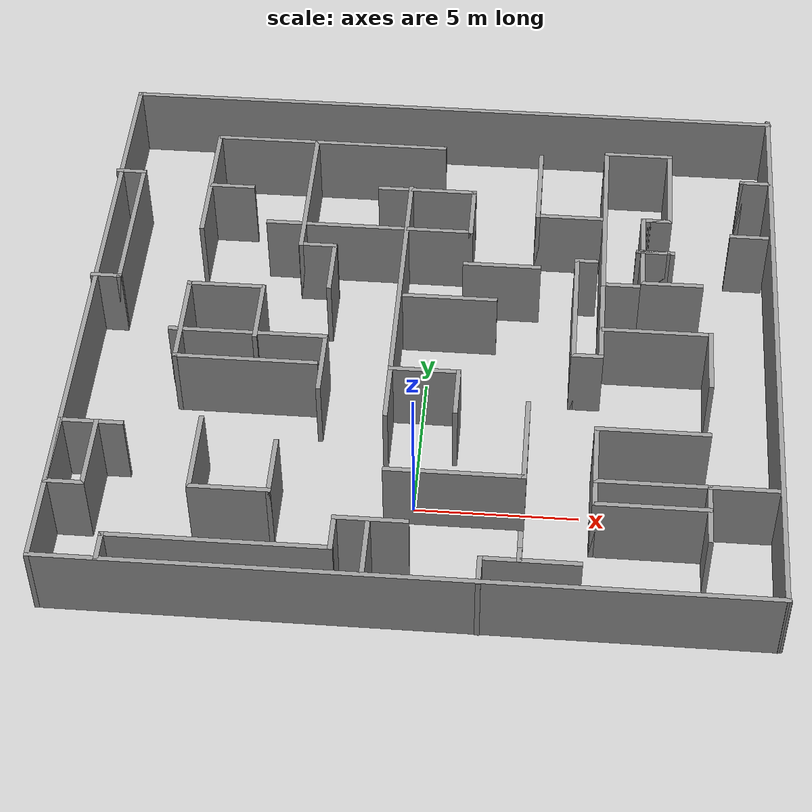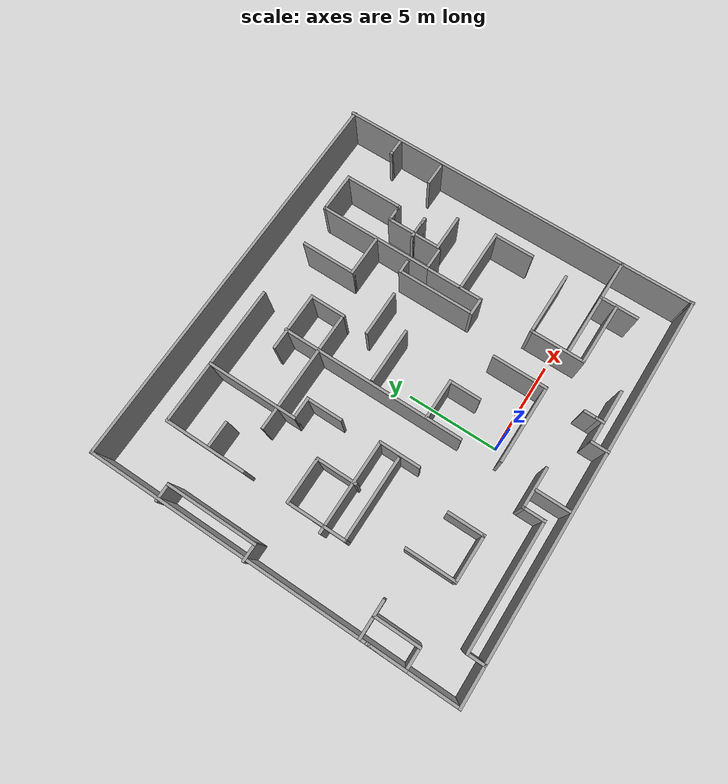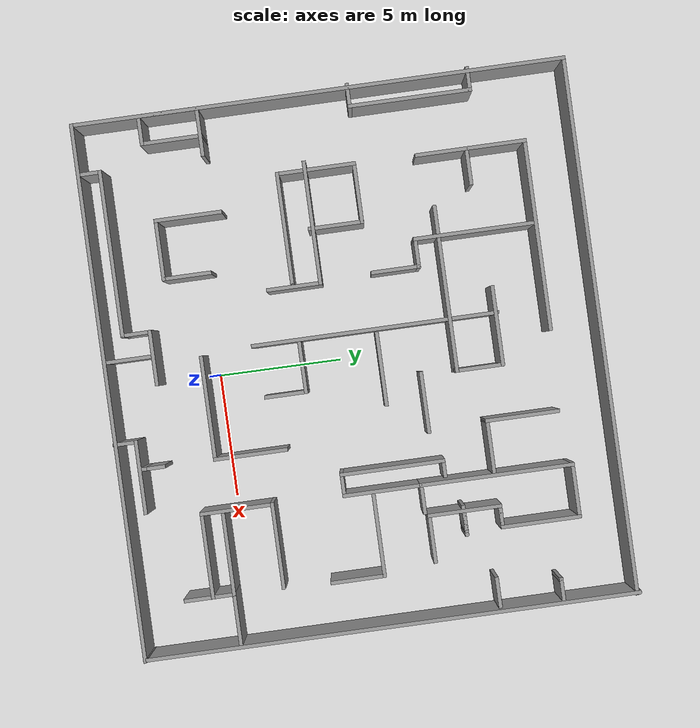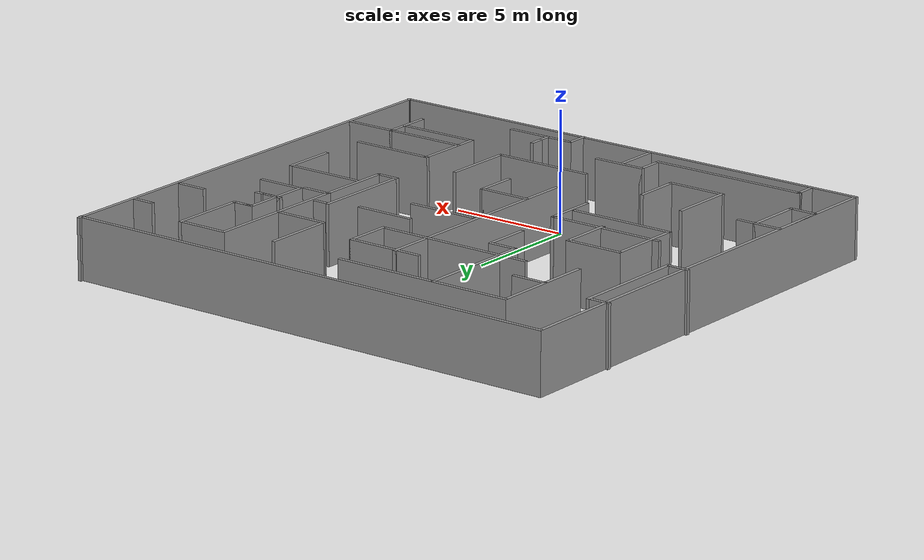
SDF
<?xml version="1.0" ?>
<sdf version="1.6">
  <world name="maze2_world">
    <include>
      <uri>file:///home/nitron/inzynierka/ALSAI/worlds/maze2/model.sdf</uri>
    </include>
  </world>
</sdf>

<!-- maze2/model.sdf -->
<sdf version='1.7'>
  <model name='maze2'>
    <pose>0.047088 5.62001 0 0 -0 0</pose>
    <link name='Wall_0'>
      <collision name='Wall_0_Collision'>
        <geometry>
          <box>
            <size>20 0.15 2.5</size>
          </box>
        </geometry>
        <pose>0 0 1.25 0 -0 0</pose>
      </collision>
      <visual name='Wall_0_Visual'>
        <pose>0 0 1.25 0 -0 0</pose>
        <geometry>
          <box>
            <size>20 0.15 2.5</size>
          </box>
        </geometry>
        <material>
          <script>
            <uri>file://media/materials/scripts/gazebo.material</uri>
            <name>Gazebo/Grey</name>
          </script>
          <ambient>1 1 1 1</ambient>
        </material>
        <meta>
          <layer>0</layer>
        </meta>
      </visual>
      <pose>10.8162 0.061509 0 0 -0 -1.5708</pose>
    </link>
    <link name='Wall_1'>
      <collision name='Wall_1_Collision'>
        <geometry>
          <box>
            <size>0.25 0.15 2.5</size>
          </box>
        </geometry>
        <pose>0 0 1.25 0 -0 0</pose>
      </collision>
      <visual name='Wall_1_Visual'>
        <pose>0 0 1.25 0 -0 0</pose>
        <geometry>
          <box>
            <size>0.25 0.15 2.5</size>
          </box>
        </geometry>
        <material>
          <script>
            <uri>file://media/materials/scripts/gazebo.material</uri>
            <name>Gazebo/Grey</name>
          </script>
          <ambient>1 1 1 1</ambient>
        </material>
        <meta>
          <layer>0</layer>
        </meta>
      </visual>
      <pose>10.8291 -9.91179 0 0 -0 -1.309</pose>
    </link>
    <link name='Wall_101'>
      <collision name='Wall_101_Collision'>
        <geometry>
          <box>
            <size>3 0.15 2.5</size>
          </box>
        </geometry>
        <pose>0 0 1.25 0 -0 0</pose>
      </collision>
      <visual name='Wall_101_Visual'>
        <pose>0 0 1.25 0 -0 0</pose>
        <geometry>
          <box>
            <size>3 0.15 2.5</size>
          </box>
        </geometry>
        <material>
          <script>
            <uri>file://media/materials/scripts/gazebo.material</uri>
            <name>Gazebo/Grey</name>
          </script>
          <ambient>1 1 1 1</ambient>
        </material>
        <meta>
          <layer>0</layer>
        </meta>
      </visual>
      <pose>0.568752 0.993133 0 0 -0 0</pose>
    </link>
    <link name='Wall_103'>
      <collision name='Wall_103_Collision'>
        <geometry>
          <box>
            <size>2.5 0.15 2.5</size>
          </box>
        </geometry>
        <pose>0 0 1.25 0 -0 0</pose>
      </collision>
      <visual name='Wall_103_Visual'>
        <pose>0 0 1.25 0 -0 0</pose>
        <geometry>
          <box>
            <size>2.5 0.15 2.5</size>
          </box>
        </geometry>
        <material>
          <script>
            <uri>file://media/materials/scripts/gazebo.material</uri>
            <name>Gazebo/Grey</name>
          </script>
          <ambient>1 1 1 1</ambient>
        </material>
        <meta>
          <layer>0</layer>
        </meta>
      </visual>
      <pose>2.13319 2.52842 0 0 -0 0</pose>
    </link>
    <link name='Wall_105'>
      <collision name='Wall_105_Collision'>
        <geometry>
          <box>
            <size>3 0.15 2.5</size>
          </box>
        </geometry>
        <pose>0 0 1.25 0 -0 0</pose>
      </collision>
      <visual name='Wall_105_Visual'>
        <pose>0 0 1.25 0 -0 0</pose>
        <geometry>
          <box>
            <size>3 0.15 2.5</size>
          </box>
        </geometry>
        <material>
          <script>
            <uri>file://media/materials/scripts/gazebo.material</uri>
            <name>Gazebo/Grey</name>
          </script>
          <ambient>1 1 1 1</ambient>
        </material>
        <meta>
          <layer>0</layer>
        </meta>
      </visual>
      <pose>3.19133 6.3141 0 0 -0 -1.5708</pose>
    </link>
    <link name='Wall_106'>
      <collision name='Wall_106_Collision'>
        <geometry>
          <box>
            <size>2.25 0.15 2.5</size>
          </box>
        </geometry>
        <pose>0 0 1.25 0 -0 0</pose>
      </collision>
      <visual name='Wall_106_Visual'>
        <pose>0 0 1.25 0 -0 0</pose>
        <geometry>
          <box>
            <size>2.25 0.15 2.5</size>
          </box>
        </geometry>
        <material>
          <script>
            <uri>file://media/materials/scripts/gazebo.material</uri>
            <name>Gazebo/Grey</name>
          </script>
          <ambient>1 1 1 1</ambient>
        </material>
        <meta>
          <layer>0</layer>
        </meta>
      </visual>
      <pose>4.24133 4.8891 0 0 -0 0</pose>
    </link>
    <link name='Wall_11'>
      <collision name='Wall_11_Collision'>
        <geometry>
          <box>
            <size>1 0.15 2.5</size>
          </box>
        </geometry>
        <pose>0 0 1.25 0 -0 0</pose>
      </collision>
      <visual name='Wall_11_Visual'>
        <pose>0 0 1.25 0 -0 0</pose>
        <geometry>
          <box>
            <size>1 0.15 2.5</size>
          </box>
        </geometry>
        <material>
          <script>
            <uri>file://media/materials/scripts/gazebo.material</uri>
            <name>Gazebo/Grey</name>
          </script>
          <ambient>1 1 1 1</ambient>
        </material>
        <meta>
          <layer>0</layer>
        </meta>
      </visual>
      <pose>6.9124 3.47316 0 0 -0 0</pose>
    </link>
    <link name='Wall_12'>
      <collision name='Wall_12_Collision'>
        <geometry>
          <box>
            <size>0.25 0.15 2.5</size>
          </box>
        </geometry>
        <pose>0 0 1.25 0 -0 0</pose>
      </collision>
      <visual name='Wall_12_Visual'>
        <pose>0 0 1.25 0 -0 0</pose>
        <geometry>
          <box>
            <size>0.25 0.15 2.5</size>
          </box>
        </geometry>
        <material>
          <script>
            <uri>file://media/materials/scripts/gazebo.material</uri>
            <name>Gazebo/Grey</name>
          </script>
          <ambient>1 1 1 1</ambient>
        </material>
        <meta>
          <layer>0</layer>
        </meta>
      </visual>
      <pose>7.3874 3.47316 0 0 -0 0</pose>
    </link>
    <link name='Wall_14'>
      <collision name='Wall_14_Collision'>
        <geometry>
          <box>
            <size>2.25 0.15 2.5</size>
          </box>
        </geometry>
        <pose>0 0 1.25 0 -0 0</pose>
      </collision>
      <visual name='Wall_14_Visual'>
        <pose>0 0 1.25 0 -0 0</pose>
        <geometry>
          <box>
            <size>2.25 0.15 2.5</size>
          </box>
        </geometry>
        <material>
          <script>
            <uri>file://media/materials/scripts/gazebo.material</uri>
            <name>Gazebo/Grey</name>
          </script>
          <ambient>1 1 1 1</ambient>
        </material>
        <meta>
          <layer>0</layer>
        </meta>
      </visual>
      <pose>6.43731 8.02884 0 0 -0 0</pose>
    </link>
    <link name='Wall_15'>
      <collision name='Wall_15_Collision'>
        <geometry>
          <box>
            <size>3.25 0.15 2.5</size>
          </box>
        </geometry>
        <pose>0 0 1.25 0 -0 0</pose>
      </collision>
      <visual name='Wall_15_Visual'>
        <pose>0 0 1.25 0 -0 0</pose>
        <geometry>
          <box>
            <size>3.25 0.15 2.5</size>
          </box>
        </geometry>
        <material>
          <script>
            <uri>file://media/materials/scripts/gazebo.material</uri>
            <name>Gazebo/Grey</name>
          </script>
          <ambient>1 1 1 1</ambient>
        </material>
        <meta>
          <layer>0</layer>
        </meta>
      </visual>
      <pose>7.48731 6.47884 0 0 -0 -1.5708</pose>
    </link>
    <link name='Wall_16'>
      <collision name='Wall_16_Collision'>
        <geometry>
          <box>
            <size>1 0.15 2.5</size>
          </box>
        </geometry>
        <pose>0 0 1.25 0 -0 0</pose>
      </collision>
      <visual name='Wall_16_Visual'>
        <pose>0 0 1.25 0 -0 0</pose>
        <geometry>
          <box>
            <size>1 0.15 2.5</size>
          </box>
        </geometry>
        <material>
          <script>
            <uri>file://media/materials/scripts/gazebo.material</uri>
            <name>Gazebo/Grey</name>
          </script>
          <ambient>1 1 1 1</ambient>
        </material>
        <meta>
          <layer>0</layer>
        </meta>
      </visual>
      <pose>7.06231 4.92884 0 0 -0 3.14159</pose>
    </link>
    <link name='Wall_17'>
      <collision name='Wall_17_Collision'>
        <geometry>
          <box>
            <size>3 0.15 2.5</size>
          </box>
        </geometry>
        <pose>0 0 1.25 0 -0 0</pose>
      </collision>
      <visual name='Wall_17_Visual'>
        <pose>0 0 1.25 0 -0 0</pose>
        <geometry>
          <box>
            <size>3 0.15 2.5</size>
          </box>
        </geometry>
        <material>
          <script>
            <uri>file://media/materials/scripts/gazebo.material</uri>
            <name>Gazebo/Grey</name>
          </script>
          <ambient>1 1 1 1</ambient>
        </material>
        <meta>
          <layer>0</layer>
        </meta>
      </visual>
      <pose>6.6373 3.50384 0 0 -0 -1.5708</pose>
    </link>
    <link name='Wall_18'>
      <collision name='Wall_18_Collision'>
        <geometry>
          <box>
            <size>2 0.15 2.5</size>
          </box>
        </geometry>
        <pose>0 0 1.25 0 -0 0</pose>
      </collision>
      <visual name='Wall_18_Visual'>
        <pose>0 0 1.25 0 -0 0</pose>
        <geometry>
          <box>
            <size>2 0.15 2.5</size>
          </box>
        </geometry>
        <material>
          <script>
            <uri>file://media/materials/scripts/gazebo.material</uri>
            <name>Gazebo/Grey</name>
          </script>
          <ambient>1 1 1 1</ambient>
        </material>
        <meta>
          <layer>0</layer>
        </meta>
      </visual>
      <pose>7.56231 2.07884 0 0 -0 0</pose>
    </link>
    <link name='Wall_2'>
      <collision name='Wall_2_Collision'>
        <geometry>
          <box>
            <size>21.75 0.15 2.5</size>
          </box>
        </geometry>
        <pose>0 0 1.25 0 -0 0</pose>
      </collision>
      <visual name='Wall_2_Visual'>
        <pose>0 0 1.25 0 -0 0</pose>
        <geometry>
          <box>
            <size>21.75 0.15 2.5</size>
          </box>
        </geometry>
        <material>
          <script>
            <uri>file://media/materials/scripts/gazebo.material</uri>
            <name>Gazebo/Grey</name>
          </script>
          <ambient>1 1 1 1</ambient>
        </material>
        <meta>
          <layer>0</layer>
        </meta>
      </visual>
      <pose>0.042033 -9.96008 0 0 -0 3.14159</pose>
    </link>
    <link name='Wall_20'>
      <collision name='Wall_20_Collision'>
        <geometry>
          <box>
            <size>1.25 0.15 2.5</size>
          </box>
        </geometry>
        <pose>0 0 1.25 0 -0 0</pose>
      </collision>
      <visual name='Wall_20_Visual'>
        <pose>0 0 1.25 0 -0 0</pose>
        <geometry>
          <box>
            <size>1.25 0.15 2.5</size>
          </box>
        </geometry>
        <material>
          <script>
            <uri>file://media/materials/scripts/gazebo.material</uri>
            <name>Gazebo/Grey</name>
          </script>
          <ambient>1 1 1 1</ambient>
        </material>
        <meta>
          <layer>0</layer>
        </meta>
      </visual>
      <pose>7.0374 3.47316 0 0 -0 0</pose>
    </link>
    <link name='Wall_22'>
      <collision name='Wall_22_Collision'>
        <geometry>
          <box>
            <size>1 0.15 2.5</size>
          </box>
        </geometry>
        <pose>0 0 1.25 0 -0 0</pose>
      </collision>
      <visual name='Wall_22_Visual'>
        <pose>0 0 1.25 0 -0 0</pose>
        <geometry>
          <box>
            <size>1 0.15 2.5</size>
          </box>
        </geometry>
        <material>
          <script>
            <uri>file://media/materials/scripts/gazebo.material</uri>
            <name>Gazebo/Grey</name>
          </script>
          <ambient>1 1 1 1</ambient>
        </material>
        <meta>
          <layer>0</layer>
        </meta>
      </visual>
      <pose>7.06231 4.92884 0 0 -0 0</pose>
    </link>
    <link name='Wall_24'>
      <collision name='Wall_24_Collision'>
        <geometry>
          <box>
            <size>6.25 0.15 2.5</size>
          </box>
        </geometry>
        <pose>0 0 1.25 0 -0 0</pose>
      </collision>
      <visual name='Wall_24_Visual'>
        <pose>0 0 1.25 0 -0 0</pose>
        <geometry>
          <box>
            <size>6.25 0.15 2.5</size>
          </box>
        </geometry>
        <material>
          <script>
            <uri>file://media/materials/scripts/gazebo.material</uri>
            <name>Gazebo/Grey</name>
          </script>
          <ambient>1 1 1 1</ambient>
        </material>
        <meta>
          <layer>0</layer>
        </meta>
      </visual>
      <pose>5.3873 4.97884 0 0 -0 -1.5708</pose>
    </link>
    <link name='Wall_25'>
      <collision name='Wall_25_Collision'>
        <geometry>
          <box>
            <size>1.25 0.15 2.5</size>
          </box>
        </geometry>
        <pose>0 0 1.25 0 -0 0</pose>
      </collision>
      <visual name='Wall_25_Visual'>
        <pose>0 0 1.25 0 -0 0</pose>
        <geometry>
          <box>
            <size>1.25 0.15 2.5</size>
          </box>
        </geometry>
        <material>
          <script>
            <uri>file://media/materials/scripts/gazebo.material</uri>
            <name>Gazebo/Grey</name>
          </script>
          <ambient>1 1 1 1</ambient>
        </material>
        <meta>
          <layer>0</layer>
        </meta>
      </visual>
      <pose>5.93731 1.92884 0 0 -0 0</pose>
    </link>
    <link name='Wall_27'>
      <collision name='Wall_27_Collision'>
        <geometry>
          <box>
            <size>3.25 0.15 2.5</size>
          </box>
        </geometry>
        <pose>0 0 1.25 0 -0 0</pose>
      </collision>
      <visual name='Wall_27_Visual'>
        <pose>0 0 1.25 0 -0 0</pose>
        <geometry>
          <box>
            <size>3.25 0.15 2.5</size>
          </box>
        </geometry>
        <material>
          <script>
            <uri>file://media/materials/scripts/gazebo.material</uri>
            <name>Gazebo/Grey</name>
          </script>
          <ambient>1 1 1 1</ambient>
        </material>
        <meta>
          <layer>0</layer>
        </meta>
      </visual>
      <pose>5.3873 0.378835 0 0 -0 -1.5708</pose>
    </link>
    <link name='Wall_28'>
      <collision name='Wall_28_Collision'>
        <geometry>
          <box>
            <size>1 0.15 2.5</size>
          </box>
        </geometry>
        <pose>0 0 1.25 0 -0 0</pose>
      </collision>
      <visual name='Wall_28_Visual'>
        <pose>0 0 1.25 0 -0 0</pose>
        <geometry>
          <box>
            <size>1 0.15 2.5</size>
          </box>
        </geometry>
        <material>
          <script>
            <uri>file://media/materials/scripts/gazebo.material</uri>
            <name>Gazebo/Grey</name>
          </script>
          <ambient>1 1 1 1</ambient>
        </material>
        <meta>
          <layer>0</layer>
        </meta>
      </visual>
      <pose>4.9623 -1.17117 0 0 -0 3.14159</pose>
    </link>
    <link name='Wall_29'>
      <collision name='Wall_29_Collision'>
        <geometry>
          <box>
            <size>4.25 0.15 2.5</size>
          </box>
        </geometry>
        <pose>0 0 1.25 0 -0 0</pose>
      </collision>
      <visual name='Wall_29_Visual'>
        <pose>0 0 1.25 0 -0 0</pose>
        <geometry>
          <box>
            <size>4.25 0.15 2.5</size>
          </box>
        </geometry>
        <material>
          <script>
            <uri>file://media/materials/scripts/gazebo.material</uri>
            <name>Gazebo/Grey</name>
          </script>
          <ambient>1 1 1 1</ambient>
        </material>
        <meta>
          <layer>0</layer>
        </meta>
      </visual>
      <pose>4.5373 0.878835 0 0 -0 1.5708</pose>
    </link>
    <link name='Wall_3'>
      <collision name='Wall_3_Collision'>
        <geometry>
          <box>
            <size>20 0.15 2.5</size>
          </box>
        </geometry>
        <pose>0 0 1.25 0 -0 0</pose>
      </collision>
      <visual name='Wall_3_Visual'>
        <pose>0 0 1.25 0 -0 0</pose>
        <geometry>
          <box>
            <size>20 0.15 2.5</size>
          </box>
        </geometry>
        <material>
          <script>
            <uri>file://media/materials/scripts/gazebo.material</uri>
            <name>Gazebo/Grey</name>
          </script>
          <ambient>1 1 1 1</ambient>
        </material>
        <meta>
          <layer>0</layer>
        </meta>
      </visual>
      <pose>-10.758 -0.035084 0 0 -0 1.5708</pose>
    </link>
    <link name='Wall_30'>
      <collision name='Wall_30_Collision'>
        <geometry>
          <box>
            <size>0.75 0.15 2.5</size>
          </box>
        </geometry>
        <pose>0 0 1.25 0 -0 0</pose>
      </collision>
      <visual name='Wall_30_Visual'>
        <pose>0 0 1.25 0 -0 0</pose>
        <geometry>
          <box>
            <size>0.75 0.15 2.5</size>
          </box>
        </geometry>
        <material>
          <script>
            <uri>file://media/materials/scripts/gazebo.material</uri>
            <name>Gazebo/Grey</name>
          </script>
          <ambient>1 1 1 1</ambient>
        </material>
        <meta>
          <layer>0</layer>
        </meta>
      </visual>
      <pose>4.8373 2.92883 0 0 -0 0</pose>
    </link>
    <link name='Wall_32'>
      <collision name='Wall_32_Collision'>
        <geometry>
          <box>
            <size>3.5 0.15 2.5</size>
          </box>
        </geometry>
        <pose>0 0 1.25 0 -0 0</pose>
      </collision>
      <visual name='Wall_32_Visual'>
        <pose>0 0 1.25 0 -0 0</pose>
        <geometry>
          <box>
            <size>3.5 0.15 2.5</size>
          </box>
        </geometry>
        <material>
          <script>
            <uri>file://media/materials/scripts/gazebo.material</uri>
            <name>Gazebo/Grey</name>
          </script>
          <ambient>1 1 1 1</ambient>
        </material>
        <meta>
          <layer>0</layer>
        </meta>
      </visual>
      <pose>7.0929 -0.016395 0 0 -0 0</pose>
    </link>
    <link name='Wall_33'>
      <collision name='Wall_33_Collision'>
        <geometry>
          <box>
            <size>2.25 0.15 2.5</size>
          </box>
        </geometry>
        <pose>0 0 1.25 0 -0 0</pose>
      </collision>
      <visual name='Wall_33_Visual'>
        <pose>0 0 1.25 0 -0 0</pose>
        <geometry>
          <box>
            <size>2.25 0.15 2.5</size>
          </box>
        </geometry>
        <material>
          <script>
            <uri>file://media/materials/scripts/gazebo.material</uri>
            <name>Gazebo/Grey</name>
          </script>
          <ambient>1 1 1 1</ambient>
        </material>
        <meta>
          <layer>0</layer>
        </meta>
      </visual>
      <pose>8.76789 -1.06639 0 0 -0 -1.5708</pose>
    </link>
    <link name='Wall_36'>
      <collision name='Wall_36_Collision'>
        <geometry>
          <box>
            <size>3.5 0.15 2.5</size>
          </box>
        </geometry>
        <pose>0 0 1.25 0 -0 0</pose>
      </collision>
      <visual name='Wall_36_Visual'>
        <pose>0 0 1.25 0 -0 0</pose>
        <geometry>
          <box>
            <size>3.5 0.15 2.5</size>
          </box>
        </geometry>
        <material>
          <script>
            <uri>file://media/materials/scripts/gazebo.material</uri>
            <name>Gazebo/Grey</name>
          </script>
          <ambient>1 1 1 1</ambient>
        </material>
        <meta>
          <layer>0</layer>
        </meta>
      </visual>
      <pose>7.00615 -4.07797 0 0 -0 3.14159</pose>
    </link>
    <link name='Wall_37'>
      <collision name='Wall_37_Collision'>
        <geometry>
          <box>
            <size>3 0.15 2.5</size>
          </box>
        </geometry>
        <pose>0 0 1.25 0 -0 0</pose>
      </collision>
      <visual name='Wall_37_Visual'>
        <pose>0 0 1.25 0 -0 0</pose>
        <geometry>
          <box>
            <size>3 0.15 2.5</size>
          </box>
        </geometry>
        <material>
          <script>
            <uri>file://media/materials/scripts/gazebo.material</uri>
            <name>Gazebo/Grey</name>
          </script>
          <ambient>1 1 1 1</ambient>
        </material>
        <meta>
          <layer>0</layer>
        </meta>
      </visual>
      <pose>5.33115 -5.50297 0 0 -0 -1.5708</pose>
    </link>
    <link name='Wall_38'>
      <collision name='Wall_38_Collision'>
        <geometry>
          <box>
            <size>3.5 0.15 2.5</size>
          </box>
        </geometry>
        <pose>0 0 1.25 0 -0 0</pose>
      </collision>
      <visual name='Wall_38_Visual'>
        <pose>0 0 1.25 0 -0 0</pose>
        <geometry>
          <box>
            <size>3.5 0.15 2.5</size>
          </box>
        </geometry>
        <material>
          <script>
            <uri>file://media/materials/scripts/gazebo.material</uri>
            <name>Gazebo/Grey</name>
          </script>
          <ambient>1 1 1 1</ambient>
        </material>
        <meta>
          <layer>0</layer>
        </meta>
      </visual>
      <pose>7.00615 -6.92797 0 0 -0 0</pose>
    </link>
    <link name='Wall_39'>
      <collision name='Wall_39_Collision'>
        <geometry>
          <box>
            <size>1 0.15 2.5</size>
          </box>
        </geometry>
        <pose>0 0 1.25 0 -0 0</pose>
      </collision>
      <visual name='Wall_39_Visual'>
        <pose>0 0 1.25 0 -0 0</pose>
        <geometry>
          <box>
            <size>1 0.15 2.5</size>
          </box>
        </geometry>
        <material>
          <script>
            <uri>file://media/materials/scripts/gazebo.material</uri>
            <name>Gazebo/Grey</name>
          </script>
          <ambient>1 1 1 1</ambient>
        </material>
        <meta>
          <layer>0</layer>
        </meta>
      </visual>
      <pose>8.68116 -6.50297 0 0 -0 1.5708</pose>
    </link>
    <link name='Wall_4'>
      <collision name='Wall_4_Collision'>
        <geometry>
          <box>
            <size>21.75 0.15 2.5</size>
          </box>
        </geometry>
        <pose>0 0 1.25 0 -0 0</pose>
      </collision>
      <visual name='Wall_4_Visual'>
        <pose>0 0 1.25 0 -0 0</pose>
        <geometry>
          <box>
            <size>21.75 0.15 2.5</size>
          </box>
        </geometry>
        <material>
          <script>
            <uri>file://media/materials/scripts/gazebo.material</uri>
            <name>Gazebo/Grey</name>
          </script>
          <ambient>1 1 1 1</ambient>
        </material>
        <meta>
          <layer>0</layer>
        </meta>
      </visual>
      <pose>0.042033 9.88992 0 0 -0 0</pose>
    </link>
    <link name='Wall_40'>
      <collision name='Wall_40_Collision'>
        <geometry>
          <box>
            <size>3.5 0.15 2.5</size>
          </box>
        </geometry>
        <pose>0 0 1.25 0 -0 0</pose>
      </collision>
      <visual name='Wall_40_Visual'>
        <pose>0 0 1.25 0 -0 0</pose>
        <geometry>
          <box>
            <size>3.5 0.15 2.5</size>
          </box>
        </geometry>
        <material>
          <script>
            <uri>file://media/materials/scripts/gazebo.material</uri>
            <name>Gazebo/Grey</name>
          </script>
          <ambient>1 1 1 1</ambient>
        </material>
        <meta>
          <layer>0</layer>
        </meta>
      </visual>
      <pose>7.00615 -6.07797 0 0 -0 3.14159</pose>
    </link>
    <link name='Wall_42'>
      <collision name='Wall_42_Collision'>
        <geometry>
          <box>
            <size>2.25 0.15 2.5</size>
          </box>
        </geometry>
        <pose>0 0 1.25 0 -0 0</pose>
      </collision>
      <visual name='Wall_42_Visual'>
        <pose>0 0 1.25 0 -0 0</pose>
        <geometry>
          <box>
            <size>2.25 0.15 2.5</size>
          </box>
        </geometry>
        <material>
          <script>
            <uri>file://media/materials/scripts/gazebo.material</uri>
            <name>Gazebo/Grey</name>
          </script>
          <ambient>1 1 1 1</ambient>
        </material>
        <meta>
          <layer>0</layer>
        </meta>
      </visual>
      <pose>9.73115 -6.07797 0 0 -0 0</pose>
    </link>
    <link name='Wall_44'>
      <collision name='Wall_44_Collision'>
        <geometry>
          <box>
            <size>1.25 0.15 2.5</size>
          </box>
        </geometry>
        <pose>0 0 1.25 0 -0 0</pose>
      </collision>
      <visual name='Wall_44_Visual'>
        <pose>0 0 1.25 0 -0 0</pose>
        <geometry>
          <box>
            <size>1.25 0.15 2.5</size>
          </box>
        </geometry>
        <material>
          <script>
            <uri>file://media/materials/scripts/gazebo.material</uri>
            <name>Gazebo/Grey</name>
          </script>
          <ambient>1 1 1 1</ambient>
        </material>
        <meta>
          <layer>0</layer>
        </meta>
      </visual>
      <pose>8.68116 -7.47797 0 0 -0 -1.5708</pose>
    </link>
    <link name='Wall_46'>
      <collision name='Wall_46_Collision'>
        <geometry>
          <box>
            <size>1 0.15 2.5</size>
          </box>
        </geometry>
        <pose>0 0 1.25 0 -0 0</pose>
      </collision>
      <visual name='Wall_46_Visual'>
        <pose>0 0 1.25 0 -0 0</pose>
        <geometry>
          <box>
            <size>1 0.15 2.5</size>
          </box>
        </geometry>
        <material>
          <script>
            <uri>file://media/materials/scripts/gazebo.material</uri>
            <name>Gazebo/Grey</name>
          </script>
          <ambient>1 1 1 1</ambient>
        </material>
        <meta>
          <layer>0</layer>
        </meta>
      </visual>
      <pose>2.12128 -9.56151 0 0 -0 1.5708</pose>
    </link>
    <link name='Wall_47'>
      <collision name='Wall_47_Collision'>
        <geometry>
          <box>
            <size>3 0.15 2.5</size>
          </box>
        </geometry>
        <pose>0 0 1.25 0 -0 0</pose>
      </collision>
      <visual name='Wall_47_Visual'>
        <pose>0 0 1.25 0 -0 0</pose>
        <geometry>
          <box>
            <size>3 0.15 2.5</size>
          </box>
        </geometry>
        <material>
          <script>
            <uri>file://media/materials/scripts/gazebo.material</uri>
            <name>Gazebo/Grey</name>
          </script>
          <ambient>1 1 1 1</ambient>
        </material>
        <meta>
          <layer>0</layer>
        </meta>
      </visual>
      <pose>3.54628 -9.13651 0 0 -0 0</pose>
    </link>
    <link name='Wall_49'>
      <collision name='Wall_49_Collision'>
        <geometry>
          <box>
            <size>0.75 0.15 2.5</size>
          </box>
        </geometry>
        <pose>0 0 1.25 0 -0 0</pose>
      </collision>
      <visual name='Wall_49_Visual'>
        <pose>0 0 1.25 0 -0 0</pose>
        <geometry>
          <box>
            <size>0.75 0.15 2.5</size>
          </box>
        </geometry>
        <material>
          <script>
            <uri>file://media/materials/scripts/gazebo.material</uri>
            <name>Gazebo/Grey</name>
          </script>
          <ambient>1 1 1 1</ambient>
        </material>
        <meta>
          <layer>0</layer>
        </meta>
      </visual>
      <pose>3.23786 -8.47208 0 0 -0 -1.5708</pose>
    </link>
    <link name='Wall_50'>
      <collision name='Wall_50_Collision'>
        <geometry>
          <box>
            <size>0.5 0.15 2.5</size>
          </box>
        </geometry>
        <pose>0 0 1.25 0 -0 0</pose>
      </collision>
      <visual name='Wall_50_Visual'>
        <pose>0 0 1.25 0 -0 0</pose>
        <geometry>
          <box>
            <size>0.5 0.15 2.5</size>
          </box>
        </geometry>
        <material>
          <script>
            <uri>file://media/materials/scripts/gazebo.material</uri>
            <name>Gazebo/Grey</name>
          </script>
          <ambient>1 1 1 1</ambient>
        </material>
        <meta>
          <layer>0</layer>
        </meta>
      </visual>
      <pose>3.23786 -8.94708 0 0 -0 -1.5708</pose>
    </link>
    <link name='Wall_52'>
      <collision name='Wall_52_Collision'>
        <geometry>
          <box>
            <size>3 0.15 2.5</size>
          </box>
        </geometry>
        <pose>0 0 1.25 0 -0 0</pose>
      </collision>
      <visual name='Wall_52_Visual'>
        <pose>0 0 1.25 0 -0 0</pose>
        <geometry>
          <box>
            <size>3 0.15 2.5</size>
          </box>
        </geometry>
        <material>
          <script>
            <uri>file://media/materials/scripts/gazebo.material</uri>
            <name>Gazebo/Grey</name>
          </script>
          <ambient>1 1 1 1</ambient>
        </material>
        <meta>
          <layer>0</layer>
        </meta>
      </visual>
      <pose>3.23786 -4.66554 0 0 -0 -1.5708</pose>
    </link>
    <link name='Wall_53'>
      <collision name='Wall_53_Collision'>
        <geometry>
          <box>
            <size>4.25 0.15 2.5</size>
          </box>
        </geometry>
        <pose>0 0 1.25 0 -0 0</pose>
      </collision>
      <visual name='Wall_53_Visual'>
        <pose>0 0 1.25 0 -0 0</pose>
        <geometry>
          <box>
            <size>4.25 0.15 2.5</size>
          </box>
        </geometry>
        <material>
          <script>
            <uri>file://media/materials/scripts/gazebo.material</uri>
            <name>Gazebo/Grey</name>
          </script>
          <ambient>1 1 1 1</ambient>
        </material>
        <meta>
          <layer>0</layer>
        </meta>
      </visual>
      <pose>1.18786 -6.09054 0 0 -0 3.14159</pose>
    </link>
    <link name='Wall_55'>
      <collision name='Wall_55_Collision'>
        <geometry>
          <box>
            <size>2.25 0.15 2.5</size>
          </box>
        </geometry>
        <pose>0 0 1.25 0 -0 0</pose>
      </collision>
      <visual name='Wall_55_Visual'>
        <pose>0 0 1.25 0 -0 0</pose>
        <geometry>
          <box>
            <size>2.25 0.15 2.5</size>
          </box>
        </geometry>
        <material>
          <script>
            <uri>file://media/materials/scripts/gazebo.material</uri>
            <name>Gazebo/Grey</name>
          </script>
          <ambient>1 1 1 1</ambient>
        </material>
        <meta>
          <layer>0</layer>
        </meta>
      </visual>
      <pose>-1.11534 -7.98598 0 0 -0 3.14159</pose>
    </link>
    <link name='Wall_56'>
      <collision name='Wall_56_Collision'>
        <geometry>
          <box>
            <size>1.25 0.15 2.5</size>
          </box>
        </geometry>
        <pose>0 0 1.25 0 -0 0</pose>
      </collision>
      <visual name='Wall_56_Visual'>
        <pose>0 0 1.25 0 -0 0</pose>
        <geometry>
          <box>
            <size>1.25 0.15 2.5</size>
          </box>
        </geometry>
        <material>
          <script>
            <uri>file://media/materials/scripts/gazebo.material</uri>
            <name>Gazebo/Grey</name>
          </script>
          <ambient>1 1 1 1</ambient>
        </material>
        <meta>
          <layer>0</layer>
        </meta>
      </visual>
      <pose>-2.16534 -8.53598 0 0 -0 -1.5708</pose>
    </link>
    <link name='Wall_57'>
      <collision name='Wall_57_Collision'>
        <geometry>
          <box>
            <size>6.75 0.15 2.5</size>
          </box>
        </geometry>
        <pose>0 0 1.25 0 -0 0</pose>
      </collision>
      <visual name='Wall_57_Visual'>
        <pose>0 0 1.25 0 -0 0</pose>
        <geometry>
          <box>
            <size>6.75 0.15 2.5</size>
          </box>
        </geometry>
        <material>
          <script>
            <uri>file://media/materials/scripts/gazebo.material</uri>
            <name>Gazebo/Grey</name>
          </script>
          <ambient>1 1 1 1</ambient>
        </material>
        <meta>
          <layer>0</layer>
        </meta>
      </visual>
      <pose>-5.46534 -9.08598 0 0 -0 3.14159</pose>
    </link>
    <link name='Wall_58'>
      <collision name='Wall_58_Collision'>
        <geometry>
          <box>
            <size>1 0.15 2.5</size>
          </box>
        </geometry>
        <pose>0 0 1.25 0 -0 0</pose>
      </collision>
      <visual name='Wall_58_Visual'>
        <pose>0 0 1.25 0 -0 0</pose>
        <geometry>
          <box>
            <size>1 0.15 2.5</size>
          </box>
        </geometry>
        <material>
          <script>
            <uri>file://media/materials/scripts/gazebo.material</uri>
            <name>Gazebo/Grey</name>
          </script>
          <ambient>1 1 1 1</ambient>
        </material>
        <meta>
          <layer>0</layer>
        </meta>
      </visual>
      <pose>-8.76534 -9.51098 0 0 -0 -1.5708</pose>
    </link>
    <link name='Wall_6'>
      <collision name='Wall_6_Collision'>
        <geometry>
          <box>
            <size>1 0.15 2.5</size>
          </box>
        </geometry>
        <pose>0 0 1.25 0 -0 0</pose>
      </collision>
      <visual name='Wall_6_Visual'>
        <pose>0 0 1.25 0 -0 0</pose>
        <geometry>
          <box>
            <size>1 0.15 2.5</size>
          </box>
        </geometry>
        <material>
          <script>
            <uri>file://media/materials/scripts/gazebo.material</uri>
            <name>Gazebo/Grey</name>
          </script>
          <ambient>1 1 1 1</ambient>
        </material>
        <meta>
          <layer>0</layer>
        </meta>
      </visual>
      <pose>10.3102 6.95234 0 0 -0 3.14159</pose>
    </link>
    <link name='Wall_60'>
      <collision name='Wall_60_Collision'>
        <geometry>
          <box>
            <size>2 0.15 2.5</size>
          </box>
        </geometry>
        <pose>0 0 1.25 0 -0 0</pose>
      </collision>
      <visual name='Wall_60_Visual'>
        <pose>0 0 1.25 0 -0 0</pose>
        <geometry>
          <box>
            <size>2 0.15 2.5</size>
          </box>
        </geometry>
        <material>
          <script>
            <uri>file://media/materials/scripts/gazebo.material</uri>
            <name>Gazebo/Grey</name>
          </script>
          <ambient>1 1 1 1</ambient>
        </material>
        <meta>
          <layer>0</layer>
        </meta>
      </visual>
      <pose>-1.18192 -9.01499 0 0 -0 1.5708</pose>
    </link>
    <link name='Wall_62'>
      <collision name='Wall_62_Collision'>
        <geometry>
          <box>
            <size>2.75 0.15 2.5</size>
          </box>
        </geometry>
        <pose>0 0 1.25 0 -0 0</pose>
      </collision>
      <visual name='Wall_62_Visual'>
        <pose>0 0 1.25 0 -0 0</pose>
        <geometry>
          <box>
            <size>2.75 0.15 2.5</size>
          </box>
        </geometry>
        <material>
          <script>
            <uri>file://media/materials/scripts/gazebo.material</uri>
            <name>Gazebo/Grey</name>
          </script>
          <ambient>1 1 1 1</ambient>
        </material>
        <meta>
          <layer>0</layer>
        </meta>
      </visual>
      <pose>-6.53216 -5.84321 0 0 -0 -1.5708</pose>
    </link>
    <link name='Wall_63'>
      <collision name='Wall_63_Collision'>
        <geometry>
          <box>
            <size>2.5 0.15 2.5</size>
          </box>
        </geometry>
        <pose>0 0 1.25 0 -0 0</pose>
      </collision>
      <visual name='Wall_63_Visual'>
        <pose>0 0 1.25 0 -0 0</pose>
        <geometry>
          <box>
            <size>2.5 0.15 2.5</size>
          </box>
        </geometry>
        <material>
          <script>
            <uri>file://media/materials/scripts/gazebo.material</uri>
            <name>Gazebo/Grey</name>
          </script>
          <ambient>1 1 1 1</ambient>
        </material>
        <meta>
          <layer>0</layer>
        </meta>
      </visual>
      <pose>-5.35717 -7.14321 0 0 -0 0</pose>
    </link>
    <link name='Wall_64'>
      <collision name='Wall_64_Collision'>
        <geometry>
          <box>
            <size>2 0.15 2.5</size>
          </box>
        </geometry>
        <pose>0 0 1.25 0 -0 0</pose>
      </collision>
      <visual name='Wall_64_Visual'>
        <pose>0 0 1.25 0 -0 0</pose>
        <geometry>
          <box>
            <size>2 0.15 2.5</size>
          </box>
        </geometry>
        <material>
          <script>
            <uri>file://media/materials/scripts/gazebo.material</uri>
            <name>Gazebo/Grey</name>
          </script>
          <ambient>1 1 1 1</ambient>
        </material>
        <meta>
          <layer>0</layer>
        </meta>
      </visual>
      <pose>-4.18217 -6.21821 0 0 -0 1.5708</pose>
    </link>
    <link name='Wall_66'>
      <collision name='Wall_66_Collision'>
        <geometry>
          <box>
            <size>2 0.15 2.5</size>
          </box>
        </geometry>
        <pose>0 0 1.25 0 -0 0</pose>
      </collision>
      <visual name='Wall_66_Visual'>
        <pose>0 0 1.25 0 -0 0</pose>
        <geometry>
          <box>
            <size>2 0.15 2.5</size>
          </box>
        </geometry>
        <material>
          <script>
            <uri>file://media/materials/scripts/gazebo.material</uri>
            <name>Gazebo/Grey</name>
          </script>
          <ambient>1 1 1 1</ambient>
        </material>
        <meta>
          <layer>0</layer>
        </meta>
      </visual>
      <pose>-9.82989 -4.9154 0 0 -0 3.14159</pose>
    </link>
    <link name='Wall_67'>
      <collision name='Wall_67_Collision'>
        <geometry>
          <box>
            <size>2.5 0.15 2.5</size>
          </box>
        </geometry>
        <pose>0 0 1.25 0 -0 0</pose>
      </collision>
      <visual name='Wall_67_Visual'>
        <pose>0 0 1.25 0 -0 0</pose>
        <geometry>
          <box>
            <size>2.5 0.15 2.5</size>
          </box>
        </geometry>
        <material>
          <script>
            <uri>file://media/materials/scripts/gazebo.material</uri>
            <name>Gazebo/Grey</name>
          </script>
          <ambient>1 1 1 1</ambient>
        </material>
        <meta>
          <layer>0</layer>
        </meta>
      </visual>
      <pose>-10.7549 -6.0904 0 0 -0 -1.5708</pose>
    </link>
    <link name='Wall_68'>
      <collision name='Wall_68_Collision'>
        <geometry>
          <box>
            <size>1.25 0.15 2.5</size>
          </box>
        </geometry>
        <pose>0 0 1.25 0 -0 0</pose>
      </collision>
      <visual name='Wall_68_Visual'>
        <pose>0 0 1.25 0 -0 0</pose>
        <geometry>
          <box>
            <size>1.25 0.15 2.5</size>
          </box>
        </geometry>
        <material>
          <script>
            <uri>file://media/materials/scripts/gazebo.material</uri>
            <name>Gazebo/Grey</name>
          </script>
          <ambient>1 1 1 1</ambient>
        </material>
        <meta>
          <layer>0</layer>
        </meta>
      </visual>
      <pose>-10.2049 -7.2654 0 0 -0 0</pose>
    </link>
    <link name='Wall_69'>
      <collision name='Wall_69_Collision'>
        <geometry>
          <box>
            <size>2.5 0.15 2.5</size>
          </box>
        </geometry>
        <pose>0 0 1.25 0 -0 0</pose>
      </collision>
      <visual name='Wall_69_Visual'>
        <pose>0 0 1.25 0 -0 0</pose>
        <geometry>
          <box>
            <size>2.5 0.15 2.5</size>
          </box>
        </geometry>
        <material>
          <script>
            <uri>file://media/materials/scripts/gazebo.material</uri>
            <name>Gazebo/Grey</name>
          </script>
          <ambient>1 1 1 1</ambient>
        </material>
        <meta>
          <layer>0</layer>
        </meta>
      </visual>
      <pose>-9.65489 -6.0904 0 0 -0 1.5708</pose>
    </link>
    <link name='Wall_7'>
      <collision name='Wall_7_Collision'>
        <geometry>
          <box>
            <size>0.16 0.15 2.5</size>
          </box>
        </geometry>
        <pose>0 0 1.25 0 -0 0</pose>
      </collision>
      <visual name='Wall_7_Visual'>
        <pose>0 0 1.25 0 -0 0</pose>
        <geometry>
          <box>
            <size>0.16 0.15 2.5</size>
          </box>
        </geometry>
        <material>
          <script>
            <uri>file://media/materials/scripts/gazebo.material</uri>
            <name>Gazebo/Grey</name>
          </script>
          <ambient>1 1 1 1</ambient>
        </material>
        <meta>
          <layer>0</layer>
        </meta>
      </visual>
      <pose>9.89024 6.95234 0 0 -0 0</pose>
    </link>
    <link name='Wall_71'>
      <collision name='Wall_71_Collision'>
        <geometry>
          <box>
            <size>5 0.15 2.5</size>
          </box>
        </geometry>
        <pose>0 0 1.25 0 -0 0</pose>
      </collision>
      <visual name='Wall_71_Visual'>
        <pose>0 0 1.25 0 -0 0</pose>
        <geometry>
          <box>
            <size>5 0.15 2.5</size>
          </box>
        </geometry>
        <material>
          <script>
            <uri>file://media/materials/scripts/gazebo.material</uri>
            <name>Gazebo/Grey</name>
          </script>
          <ambient>1 1 1 1</ambient>
        </material>
        <meta>
          <layer>0</layer>
        </meta>
      </visual>
      <pose>-5.59593 -0.960871 0 0 -0 0</pose>
    </link>
    <link name='Wall_72'>
      <collision name='Wall_72_Collision'>
        <geometry>
          <box>
            <size>2.25 0.15 2.5</size>
          </box>
        </geometry>
        <pose>0 0 1.25 0 -0 0</pose>
      </collision>
      <visual name='Wall_72_Visual'>
        <pose>0 0 1.25 0 -0 0</pose>
        <geometry>
          <box>
            <size>2.25 0.15 2.5</size>
          </box>
        </geometry>
        <material>
          <script>
            <uri>file://media/materials/scripts/gazebo.material</uri>
            <name>Gazebo/Grey</name>
          </script>
          <ambient>1 1 1 1</ambient>
        </material>
        <meta>
          <layer>0</layer>
        </meta>
      </visual>
      <pose>-3.17093 -2.01087 0 0 -0 -1.5708</pose>
    </link>
    <link name='Wall_74'>
      <collision name='Wall_74_Collision'>
        <geometry>
          <box>
            <size>4.5 0.15 2.5</size>
          </box>
        </geometry>
        <pose>0 0 1.25 0 -0 0</pose>
      </collision>
      <visual name='Wall_74_Visual'>
        <pose>0 0 1.25 0 -0 0</pose>
        <geometry>
          <box>
            <size>4.5 0.15 2.5</size>
          </box>
        </geometry>
        <material>
          <script>
            <uri>file://media/materials/scripts/gazebo.material</uri>
            <name>Gazebo/Grey</name>
          </script>
          <ambient>1 1 1 1</ambient>
        </material>
        <meta>
          <layer>0</layer>
        </meta>
      </visual>
      <pose>-5.54354 -2.07744 0 0 -0 3.14159</pose>
    </link>
    <link name='Wall_75'>
      <collision name='Wall_75_Collision'>
        <geometry>
          <box>
            <size>3.25 0.15 2.5</size>
          </box>
        </geometry>
        <pose>0 0 1.25 0 -0 0</pose>
      </collision>
      <visual name='Wall_75_Visual'>
        <pose>0 0 1.25 0 -0 0</pose>
        <geometry>
          <box>
            <size>3.25 0.15 2.5</size>
          </box>
        </geometry>
        <material>
          <script>
            <uri>file://media/materials/scripts/gazebo.material</uri>
            <name>Gazebo/Grey</name>
          </script>
          <ambient>1 1 1 1</ambient>
        </material>
        <meta>
          <layer>0</layer>
        </meta>
      </visual>
      <pose>-7.71854 -0.527445 0 0 -0 1.5708</pose>
    </link>
    <link name='Wall_76'>
      <collision name='Wall_76_Collision'>
        <geometry>
          <box>
            <size>2.5 0.15 2.5</size>
          </box>
        </geometry>
        <pose>0 0 1.25 0 -0 0</pose>
      </collision>
      <visual name='Wall_76_Visual'>
        <pose>0 0 1.25 0 -0 0</pose>
        <geometry>
          <box>
            <size>2.5 0.15 2.5</size>
          </box>
        </geometry>
        <material>
          <script>
            <uri>file://media/materials/scripts/gazebo.material</uri>
            <name>Gazebo/Grey</name>
          </script>
          <ambient>1 1 1 1</ambient>
        </material>
        <meta>
          <layer>0</layer>
        </meta>
      </visual>
      <pose>-6.54354 1.02256 0 0 -0 0</pose>
    </link>
    <link name='Wall_77'>
      <collision name='Wall_77_Collision'>
        <geometry>
          <box>
            <size>2.25 0.15 2.5</size>
          </box>
        </geometry>
        <pose>0 0 1.25 0 -0 0</pose>
      </collision>
      <visual name='Wall_77_Visual'>
        <pose>0 0 1.25 0 -0 0</pose>
        <geometry>
          <box>
            <size>2.25 0.15 2.5</size>
          </box>
        </geometry>
        <material>
          <script>
            <uri>file://media/materials/scripts/gazebo.material</uri>
            <name>Gazebo/Grey</name>
          </script>
          <ambient>1 1 1 1</ambient>
        </material>
        <meta>
          <layer>0</layer>
        </meta>
      </visual>
      <pose>-5.36854 -0.027445 0 0 -0 -1.5708</pose>
    </link>
    <link name='Wall_79'>
      <collision name='Wall_79_Collision'>
        <geometry>
          <box>
            <size>1 0.15 2.5</size>
          </box>
        </geometry>
        <pose>0 0 1.25 0 -0 0</pose>
      </collision>
      <visual name='Wall_79_Visual'>
        <pose>0 0 1.25 0 -0 0</pose>
        <geometry>
          <box>
            <size>1 0.15 2.5</size>
          </box>
        </geometry>
        <material>
          <script>
            <uri>file://media/materials/scripts/gazebo.material</uri>
            <name>Gazebo/Grey</name>
          </script>
          <ambient>1 1 1 1</ambient>
        </material>
        <meta>
          <layer>0</layer>
        </meta>
      </visual>
      <pose>-10.4339 6.01772 0 0 -0 0</pose>
    </link>
    <link name='Wall_80'>
      <collision name='Wall_80_Collision'>
        <geometry>
          <box>
            <size>5 0.15 2.5</size>
          </box>
        </geometry>
        <pose>0 0 1.25 0 -0 0</pose>
      </collision>
      <visual name='Wall_80_Visual'>
        <pose>0 0 1.25 0 -0 0</pose>
        <geometry>
          <box>
            <size>5 0.15 2.5</size>
          </box>
        </geometry>
        <material>
          <script>
            <uri>file://media/materials/scripts/gazebo.material</uri>
            <name>Gazebo/Grey</name>
          </script>
          <ambient>1 1 1 1</ambient>
        </material>
        <meta>
          <layer>0</layer>
        </meta>
      </visual>
      <pose>-10.0089 3.59272 0 0 -0 -1.5708</pose>
    </link>
    <link name='Wall_81'>
      <collision name='Wall_81_Collision'>
        <geometry>
          <box>
            <size>1 0.15 2.5</size>
          </box>
        </geometry>
        <pose>0 0 1.25 0 -0 0</pose>
      </collision>
      <visual name='Wall_81_Visual'>
        <pose>0 0 1.25 0 -0 0</pose>
        <geometry>
          <box>
            <size>1 0.15 2.5</size>
          </box>
        </geometry>
        <material>
          <script>
            <uri>file://media/materials/scripts/gazebo.material</uri>
            <name>Gazebo/Grey</name>
          </script>
          <ambient>1 1 1 1</ambient>
        </material>
        <meta>
          <layer>0</layer>
        </meta>
      </visual>
      <pose>-10.4339 1.16772 0 0 -0 3.14159</pose>
    </link>
    <link name='Wall_83'>
      <collision name='Wall_83_Collision'>
        <geometry>
          <box>
            <size>4.5 0.15 2.5</size>
          </box>
        </geometry>
        <pose>0 0 1.25 0 -0 0</pose>
      </collision>
      <visual name='Wall_83_Visual'>
        <pose>0 0 1.25 0 -0 0</pose>
        <geometry>
          <box>
            <size>4.5 0.15 2.5</size>
          </box>
        </geometry>
        <material>
          <script>
            <uri>file://media/materials/scripts/gazebo.material</uri>
            <name>Gazebo/Grey</name>
          </script>
          <ambient>1 1 1 1</ambient>
        </material>
        <meta>
          <layer>0</layer>
        </meta>
      </visual>
      <pose>-7.69526 5.72695 0 0 -0 1.5708</pose>
    </link>
    <link name='Wall_84'>
      <collision name='Wall_84_Collision'>
        <geometry>
          <box>
            <size>7.75 0.15 2.5</size>
          </box>
        </geometry>
        <pose>0 0 1.25 0 -0 0</pose>
      </collision>
      <visual name='Wall_84_Visual'>
        <pose>0 0 1.25 0 -0 0</pose>
        <geometry>
          <box>
            <size>7.75 0.15 2.5</size>
          </box>
        </geometry>
        <material>
          <script>
            <uri>file://media/materials/scripts/gazebo.material</uri>
            <name>Gazebo/Grey</name>
          </script>
          <ambient>1 1 1 1</ambient>
        </material>
        <meta>
          <layer>0</layer>
        </meta>
      </visual>
      <pose>-3.89526 7.90195 0 0 -0 0</pose>
    </link>
    <link name='Wall_86'>
      <collision name='Wall_86_Collision'>
        <geometry>
          <box>
            <size>1.5 0.15 2.5</size>
          </box>
        </geometry>
        <pose>0 0 1.25 0 -0 0</pose>
      </collision>
      <visual name='Wall_86_Visual'>
        <pose>0 0 1.25 0 -0 0</pose>
        <geometry>
          <box>
            <size>1.5 0.15 2.5</size>
          </box>
        </geometry>
        <material>
          <script>
            <uri>file://media/materials/scripts/gazebo.material</uri>
            <name>Gazebo/Grey</name>
          </script>
          <ambient>1 1 1 1</ambient>
        </material>
        <meta>
          <layer>0</layer>
        </meta>
      </visual>
      <pose>-6.97374 5.55248 0 0 -0 0</pose>
    </link>
    <link name='Wall_88'>
      <collision name='Wall_88_Collision'>
        <geometry>
          <box>
            <size>5 0.15 2.5</size>
          </box>
        </geometry>
        <pose>0 0 1.25 0 -0 0</pose>
      </collision>
      <visual name='Wall_88_Visual'>
        <pose>0 0 1.25 0 -0 0</pose>
        <geometry>
          <box>
            <size>5 0.15 2.5</size>
          </box>
        </geometry>
        <material>
          <script>
            <uri>file://media/materials/scripts/gazebo.material</uri>
            <name>Gazebo/Grey</name>
          </script>
          <ambient>1 1 1 1</ambient>
        </material>
        <meta>
          <layer>0</layer>
        </meta>
      </visual>
      <pose>-4.39206 5.45367 0 0 -0 -1.5708</pose>
    </link>
    <link name='Wall_89'>
      <collision name='Wall_89_Collision'>
        <geometry>
          <box>
            <size>1.25 0.15 2.5</size>
          </box>
        </geometry>
        <pose>0 0 1.25 0 -0 0</pose>
      </collision>
      <visual name='Wall_89_Visual'>
        <pose>0 0 1.25 0 -0 0</pose>
        <geometry>
          <box>
            <size>1.25 0.15 2.5</size>
          </box>
        </geometry>
        <material>
          <script>
            <uri>file://media/materials/scripts/gazebo.material</uri>
            <name>Gazebo/Grey</name>
          </script>
          <ambient>1 1 1 1</ambient>
        </material>
        <meta>
          <layer>0</layer>
        </meta>
      </visual>
      <pose>-3.84206 3.02867 0 0 -0 0</pose>
    </link>
    <link name='Wall_9'>
      <collision name='Wall_9_Collision'>
        <geometry>
          <box>
            <size>1.25 0.15 2.5</size>
          </box>
        </geometry>
        <pose>0 0 1.25 0 -0 0</pose>
      </collision>
      <visual name='Wall_9_Visual'>
        <pose>0 0 1.25 0 -0 0</pose>
        <geometry>
          <box>
            <size>1.25 0.15 2.5</size>
          </box>
        </geometry>
        <material>
          <script>
            <uri>file://media/materials/scripts/gazebo.material</uri>
            <name>Gazebo/Grey</name>
          </script>
          <ambient>1 1 1 1</ambient>
        </material>
        <meta>
          <layer>0</layer>
        </meta>
      </visual>
      <pose>10.0639 4.40364 0 0 -0 3.14159</pose>
    </link>
    <link name='Wall_90'>
      <collision name='Wall_90_Collision'>
        <geometry>
          <box>
            <size>2 0.15 2.5</size>
          </box>
        </geometry>
        <pose>0 0 1.25 0 -0 0</pose>
      </collision>
      <visual name='Wall_90_Visual'>
        <pose>0 0 1.25 0 -0 0</pose>
        <geometry>
          <box>
            <size>2 0.15 2.5</size>
          </box>
        </geometry>
        <material>
          <script>
            <uri>file://media/materials/scripts/gazebo.material</uri>
            <name>Gazebo/Grey</name>
          </script>
          <ambient>1 1 1 1</ambient>
        </material>
        <meta>
          <layer>0</layer>
        </meta>
      </visual>
      <pose>-3.29207 2.10367 0 0 -0 -1.5708</pose>
    </link>
    <link name='Wall_92'>
      <collision name='Wall_92_Collision'>
        <geometry>
          <box>
            <size>6.75 0.15 2.5</size>
          </box>
        </geometry>
        <pose>0 0 1.25 0 -0 0</pose>
      </collision>
      <visual name='Wall_92_Visual'>
        <pose>0 0 1.25 0 -0 0</pose>
        <geometry>
          <box>
            <size>6.75 0.15 2.5</size>
          </box>
        </geometry>
        <material>
          <script>
            <uri>file://media/materials/scripts/gazebo.material</uri>
            <name>Gazebo/Grey</name>
          </script>
          <ambient>1 1 1 1</ambient>
        </material>
        <meta>
          <layer>0</layer>
        </meta>
      </visual>
      <pose>-2.25516 3.97066 0 0 -0 0</pose>
    </link>
    <link name='Wall_93'>
      <collision name='Wall_93_Collision'>
        <geometry>
          <box>
            <size>2 0.15 2.5</size>
          </box>
        </geometry>
        <pose>0 0 1.25 0 -0 0</pose>
      </collision>
      <visual name='Wall_93_Visual'>
        <pose>0 0 1.25 0 -0 0</pose>
        <geometry>
          <box>
            <size>2 0.15 2.5</size>
          </box>
        </geometry>
        <material>
          <script>
            <uri>file://media/materials/scripts/gazebo.material</uri>
            <name>Gazebo/Grey</name>
          </script>
          <ambient>1 1 1 1</ambient>
        </material>
        <meta>
          <layer>0</layer>
        </meta>
      </visual>
      <pose>1.04484 4.89566 0 0 -0 1.5708</pose>
    </link>
    <link name='Wall_94'>
      <collision name='Wall_94_Collision'>
        <geometry>
          <box>
            <size>3.25 0.15 2.5</size>
          </box>
        </geometry>
        <pose>0 0 1.25 0 -0 0</pose>
      </collision>
      <visual name='Wall_94_Visual'>
        <pose>0 0 1.25 0 -0 0</pose>
        <geometry>
          <box>
            <size>3.25 0.15 2.5</size>
          </box>
        </geometry>
        <material>
          <script>
            <uri>file://media/materials/scripts/gazebo.material</uri>
            <name>Gazebo/Grey</name>
          </script>
          <ambient>1 1 1 1</ambient>
        </material>
        <meta>
          <layer>0</layer>
        </meta>
      </visual>
      <pose>-0.505163 5.82066 0 0 -0 3.14159</pose>
    </link>
    <link name='Wall_96'>
      <collision name='Wall_96_Collision'>
        <geometry>
          <box>
            <size>10 0.15 2.5</size>
          </box>
        </geometry>
        <pose>0 0 1.25 0 -0 0</pose>
      </collision>
      <visual name='Wall_96_Visual'>
        <pose>0 0 1.25 0 -0 0</pose>
        <geometry>
          <box>
            <size>10 0.15 2.5</size>
          </box>
        </geometry>
        <material>
          <script>
            <uri>file://media/materials/scripts/gazebo.material</uri>
            <name>Gazebo/Grey</name>
          </script>
          <ambient>1 1 1 1</ambient>
        </material>
        <meta>
          <layer>0</layer>
        </meta>
      </visual>
      <pose>-1.04234 0.953144 0 0 -0 -1.5708</pose>
    </link>
    <link name='Wall_98'>
      <collision name='Wall_98_Collision'>
        <geometry>
          <box>
            <size>2.25 0.15 2.5</size>
          </box>
        </geometry>
        <pose>0 0 1.25 0 -0 0</pose>
      </collision>
      <visual name='Wall_98_Visual'>
        <pose>0 0 1.25 0 -0 0</pose>
        <geometry>
          <box>
            <size>2.25 0.15 2.5</size>
          </box>
        </geometry>
        <material>
          <script>
            <uri>file://media/materials/scripts/gazebo.material</uri>
            <name>Gazebo/Grey</name>
          </script>
          <ambient>1 1 1 1</ambient>
        </material>
        <meta>
          <layer>0</layer>
        </meta>
      </visual>
      <pose>0.007657 -2.12397 0 0 -0 0</pose>
    </link>
    <link name='Wall_99'>
      <collision name='Wall_99_Collision'>
        <geometry>
          <box>
            <size>1.75 0.15 2.5</size>
          </box>
        </geometry>
        <pose>0 0 1.25 0 -0 0</pose>
      </collision>
      <visual name='Wall_99_Visual'>
        <pose>0 0 1.25 0 -0 0</pose>
        <geometry>
          <box>
            <size>1.75 0.15 2.5</size>
          </box>
        </geometry>
        <material>
          <script>
            <uri>file://media/materials/scripts/gazebo.material</uri>
            <name>Gazebo/Grey</name>
          </script>
          <ambient>1 1 1 1</ambient>
        </material>
        <meta>
          <layer>0</layer>
        </meta>
      </visual>
      <pose>1.05766 -2.92397 0 0 -0 -1.5708</pose>
    </link>
    <static>1</static>
  </model>
</sdf>
